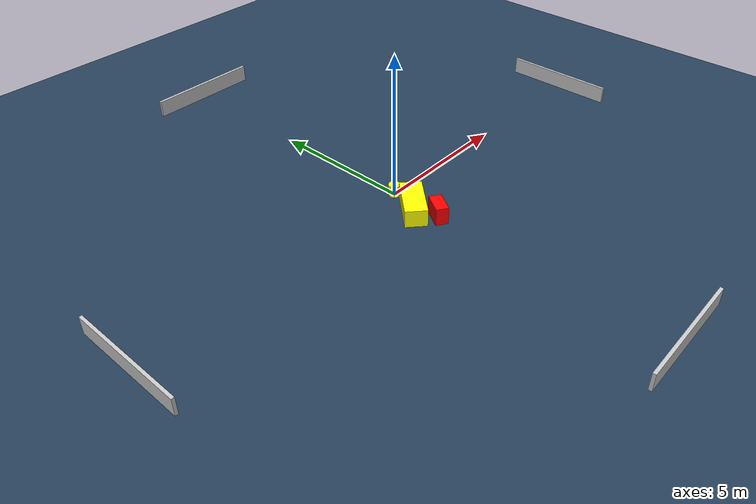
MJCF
<?xml version="1.0" ?>
<mujoco model="generated_environment">
  <option timestep="0.01" integrator="RK4" cone="elliptic"/>
  <default>
    <geom density="1"/>
  </default>
  <asset>
    <texture builtin="gradient" height="3072" name="skybox" rgb1="0.3 0.5 0.7" rgb2="0 0 0" type="skybox" width="512"/>
    <texture builtin="checker" height="300" name="groundplane" rgb1="0.2 0.3 0.4" rgb2="0.1 0.2 0.3" type="2d" width="300"/>
    <material name="groundplane" reflectance="0.2" texrepeat="5 5" texture="groundplane"/>
  </asset>
  <worldbody>
    <light dir="0 0 -1" directional="true" pos="0 0 1.5"/>
    <geom condim="3" friction="0.5 0.005 0.001" material="groundplane" name="floor" pos="0 0 0" size="0 0 0.05" type="plane"/>
    <body name="walls">
      <geom name="wall_1" condim="4" pos="-10.0 0.0 0.3" rgba="0.800000011920929 0.800000011920929 0.800000011920929 1.0" size="0.05 2.0 0.3" type="box"/>
      <geom name="wall_2" condim="4" pos="10.0 0.0 0.3" rgba="0.800000011920929 0.800000011920929 0.800000011920929 1.0" size="0.05 2.0 0.3" type="box"/>
      <geom name="wall_3" condim="4" pos="0.0 -10.0 0.3" rgba="0.800000011920929 0.800000011920929 0.800000011920929 1.0" size="2.0 0.05 0.3" type="box"/>
      <geom name="wall_4" condim="4" pos="0.0 10.0 0.3" rgba="0.800000011920929 0.800000011920929 0.800000011920929 1.0" size="2.0 0.05 0.3" type="box"/>
    </body>
    <body name="robot">
      <joint name="joint_x" type="slide" pos="0 0 0" axis="1 0 0"/>
      <joint name="joint_y" type="slide" pos="0 0 0" axis="0 1 0"/>
      <geom name="robot" type="cylinder" pos="0.0 0.0 0.2" size="0.2 0.2 0.0" mass="5.0" friction="1.0 0.005 0.0001" condim="4" rgba="1.0 1.0 0.0 1.0"/>
    </body>
    <body name="obstacle_1_movable">
      <geom name="obstacle_1_movable" condim="4" pos="-0.30206360437329527 -1.0536510491619775 0.3" euler="0 0 227.29400426258104" friction="0.0 0.005 0.001" rgba="1.0 1.0 0.0 1.0" size="0.7878519571887126 0.367020259171974 0.3" type="box" mass="0.1"/>
      <joint type="free"/>
    </body>
    <body name="obstacle_2_static">
      <geom name="obstacle_2_static" condim="4" pos="-0.021824361344167844 -1.845172276297265 0.3" euler="0 0 237.2486508638715" friction="0.0 0.005 0.001" rgba="1.0 0.0 0.0 1.0" size="0.37740289315601483 0.20962558401474948 0.3" type="box"/>
    </body>
  </worldbody>
  <actuator>
    <motor name="actuator_x" joint="joint_x" gear="1" ctrlrange="-1 1"/>
    <motor name="actuator_y" joint="joint_y" gear="1" ctrlrange="-1 1"/>
  </actuator>
</mujoco>
